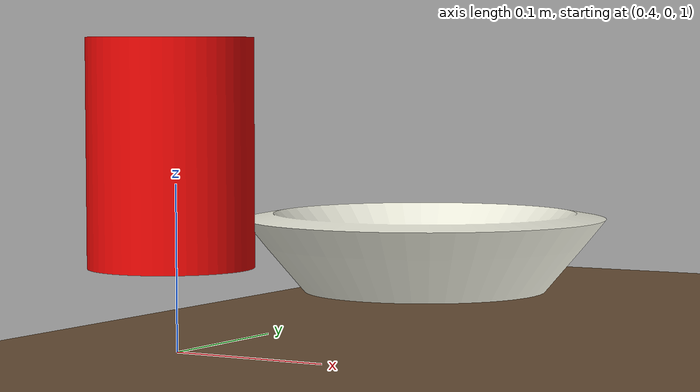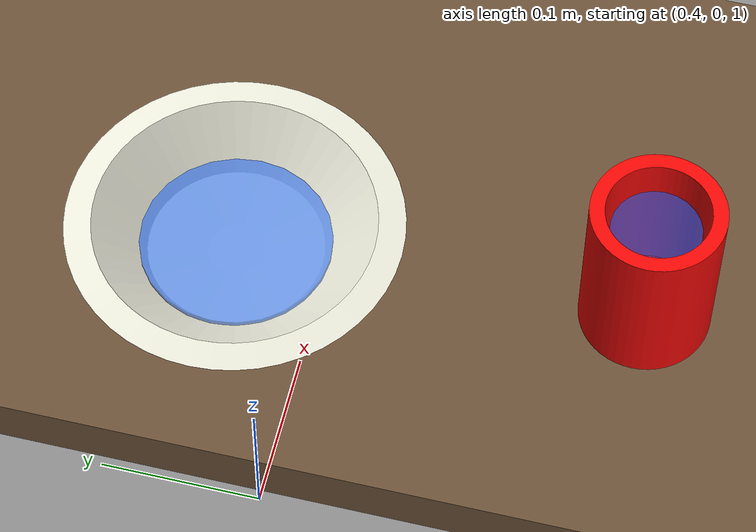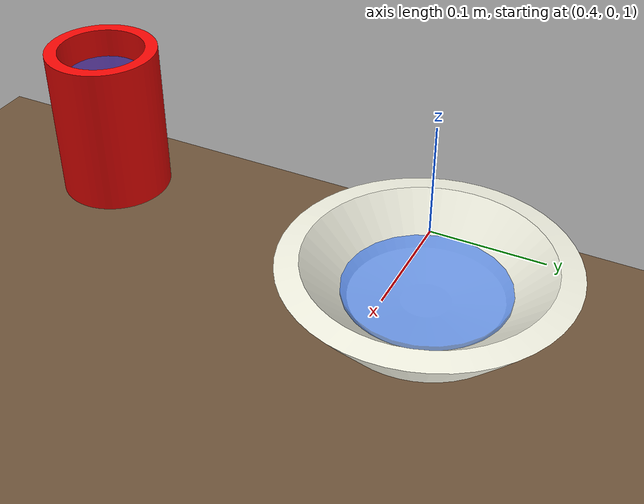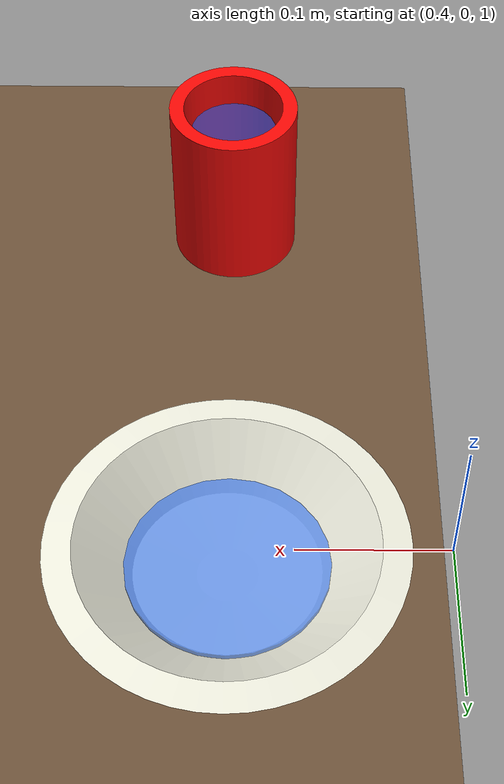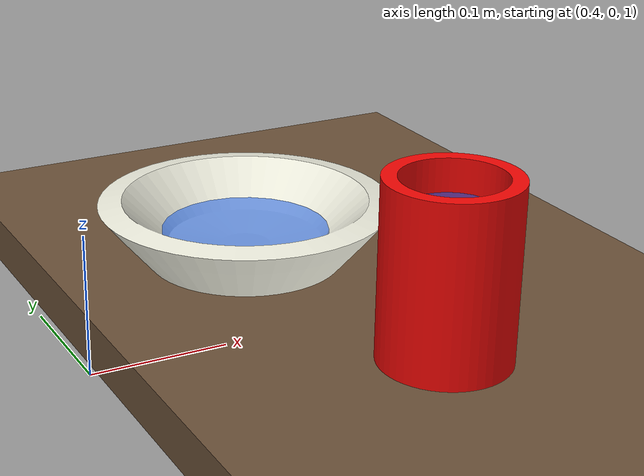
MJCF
<?xml version="1.0"?>
<mujoco model="lilac_cup_bowl_scene">
  <asset>
    <material name="mat_lilac_station" rgba="0.42 0.32 0.22 1"/>
    <material name="mat_lilac_station_edge" rgba="0.25 0.20 0.16 1"/>
    <material name="mat_lilac_cup_holder" rgba="0.72 0.72 0.68 1"/>
    <material name="mat_lilac_cup" rgba="0.95 0.03 0.02 1"/>
    <material name="mat_lilac_bowl" rgba="0.92 0.92 0.86 1"/>
    <material name="mat_lilac_water" rgba="0.05 0.35 0.95 0.55"/>
    <material name="mat_lilac_remote_body" rgba="0.06 0.06 0.065 1"/>
    <material name="mat_lilac_remote_face" rgba="0.16 0.16 0.17 1"/>
    <material name="mat_lilac_remote_button" rgba="0.86 0.86 0.82 1"/>
    <material name="mat_lilac_remote_power" rgba="0.86 0.05 0.04 1"/>
    <material name="mat_lilac_remote_support" rgba="0.46 0.46 0.42 1"/>
    <mesh name="mesh_lilac_cup_open" file="../../asset/cup_open_cylinder.obj"/>
    <mesh name="mesh_lilac_bowl_plate" file="../../asset/bowl_plate.obj"/>
    <mesh name="mesh_lilac_remote_support_wedge" file="../../asset/remote_support_wedge.obj"/>
  </asset>

  <worldbody>
    <body name="lilac_pour_station" pos="0.65 -0.05 1.13">
      <geom name="lilac_station_bottom" type="box" pos="0.0 0.0 -0.12" size="0.24 0.672 0.018" material="mat_lilac_station" contype="1" conaffinity="1"/>
    </body>

    <body name="task_cup" pos="0.54 -0.205 1.13">
      <freejoint name="task_cup_freejoint"/>
      <inertial pos="0 0 0" mass="0.06" diaginertia="0.00008 0.00008 0.00005"/>
      <geom name="task_cup_visual_geom" type="mesh" mesh="mesh_lilac_cup_open" rgba="0.95 0.03 0.02 1" contype="0" conaffinity="0" density="0"/>
      <geom name="task_cup_collision_geom" type="cylinder" pos="0 0 0" size="0.040 0.055" rgba="0 0 0 0" density="0" friction="1.2 0.01 0.001"/>
      <geom name="task_cup_water_geom" type="cylinder" pos="0 0 0.030" size="0.027 0.006" material="mat_lilac_water" contype="0" conaffinity="0"/>
      <site name="task_cup_site" pos="0 0 0" type="sphere" size="0.001" rgba="0 0 0 0"/>
    </body>

    <body name="task_bowl" pos="0.54 0.05 1.04">
      <geom name="task_bowl_visual_geom" type="mesh" mesh="mesh_lilac_bowl_plate" material="mat_lilac_bowl" contype="0" conaffinity="0"/>
      <geom name="task_bowl_collision_geom" type="cylinder" pos="0 0 0.008" size="0.105 0.010" rgba="0 0 0 0" contype="1" conaffinity="1"/>
      <geom name="task_bowl_water_geom" type="cylinder" pos="0 0 0.018" size="0.060 0.004" material="mat_lilac_water" contype="0" conaffinity="0"/>
      <site name="task_bowl_site" pos="0 0 0.045" type="sphere" size="0.001" rgba="0 0 0 0"/>
    </body>
  </worldbody>
</mujoco>
